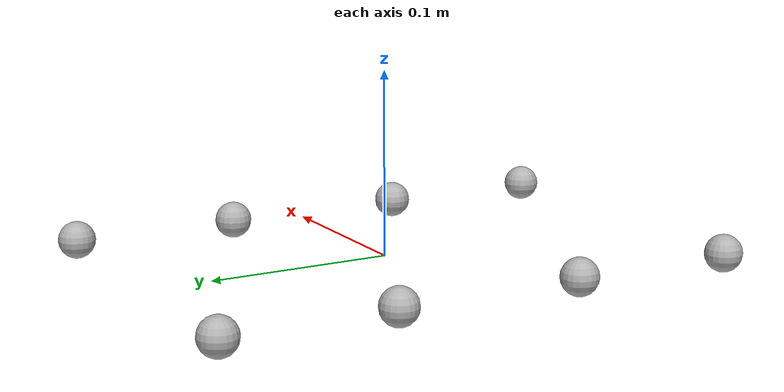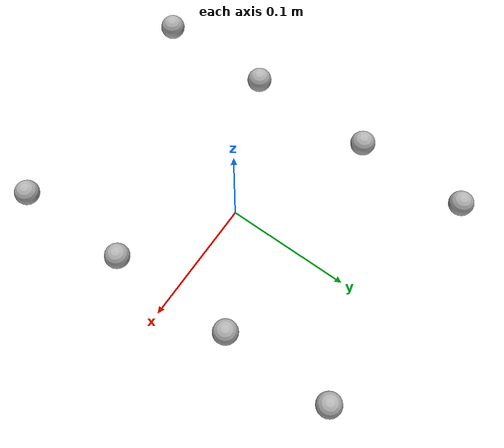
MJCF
<?xml version='1.0' encoding='utf-8'?>
<mujoco model="nemo4b">
<compiler angle="radian" autolimits="true" />

  <option timestep="0.0035" iterations="8" ls_iterations="4">
    <flag eulerdamp="disable" />
  </option>

  <custom>
        <numeric data="2500" name="constraint_limit_stiffness" />
        <numeric data="27000" name="constraint_stiffness" />
        <numeric data="30" name="constraint_ang_damping" />
        <numeric data="80" name="constraint_vel_damping" />
        <numeric data="-0.05" name="ang_damping" />
        <numeric data="0.5" name="joint_scale_pos" />
        <numeric data="0.1" name="joint_scale_ang" />
        <numeric data="0" name="spring_mass_scale" />
        <numeric data="1" name="spring_inertia_scale" />
        <numeric data="20" name="matrix_inv_iterations" />
        <numeric data="15" name="solver_maxls" />
  </custom>

  <visual>
    <global ellipsoidinertia="true" />
  </visual>
  <default>
    <geom contype="0" conaffinity="0" condim="1" solref="0.005 1" />
    <equality solref="0.005 1" />
    <default class="robot">
      <site rgba="1 0 0 1" size="0.01" group="5" />
      <default class="collision">
        <geom conaffinity="1" contype="2" rgba="0.5 0.5 0.5 1" material="metallic" />
        <default class="foot_sphere">
            <geom contype="1" conaffinity="1" size=".01" type="sphere"/>
          </default>
      </default>
    </default>
  </default>

  <asset>
    <material name="metallic" rgba="0.7 0.7 0.7 1" />
    <material name="black" rgba="0.2 0.2 0.2 1" />
    <material name="transparent" rgba="0 0 0 0" />
  </asset>

<worldbody>
  <light name="spotlight" mode="targetbodycom" target="pelvis" pos="0 -6 4" cutoff="30" />
  <body name="pelvis" pos="0.0 0.0 0.6088" childclass="robot">
    <inertial pos="0.00505250 -0.00005977 0.18608225" mass="5.29698285" fullinertia="0.11381520 0.08283557 0.05217409 -0.00002232 0.00625310 -0.00006998" />
    <freejoint name="floating_base" />
    <site name="imu"/>
    <body name="l_hip_pitch" pos="0.0 0.0965 -0.112">
      <inertial pos="-0.01821923 -0.0 -3.205e-05" mass="1.8670971" fullinertia="0.00265583 0.00363357 0.00358009 -2e-07 -1.09e-06 -0.0" />
      <joint armature="0.005" damping="2" actuatorfrcrange="-47.4 47.4" name="l_hip_pitch" axis="0 1 0" range="-1.3 1.3" />
      <body name="l_hip_roll" pos="-0.07875 0.0 0.0">
        <inertial pos="-0.01740501 1.764e-05 -0.05845559" mass="2.00459959" fullinertia="0.0064706 0.00633136 0.00303949 4.7e-07 -0.00070962 9e-07" />
        <joint armature="0.005" damping="1" actuatorfrcrange="-23.7 23.7" name="l_hip_roll" axis="1 0 0" range="-0.4 1.5" />
        <body name="l_hip_yaw" pos="0.00715 0.0 -0.1263">
          <inertial pos="3.205e-05 -0.0 -0.06053076999999999" mass="1.8670971" fullinertia="0.00358009 0.00363357 0.00265583 -0.0 -1.09e-06 -2e-07" />
          <joint armature="0.005" damping="1" actuatorfrcrange="-23.7 23.7" name="l_hip_yaw" axis="0 0 1" range="-1.0 1.0" />
          <body name="l_knee" pos="0.0 0.0 -0.07875">
            <inertial pos="0.0 5e-05 -0.10289321" mass="0.58007416" fullinertia="0.0070466 0.00513742 0.00225232 -0.0 0.0 -0.0" />
            <joint armature="0.005" damping="2" actuatorfrcrange="-47.4 47.4" name="l_knee" axis="0 1 0" range="-0.3 2" />
            <body name="l_foot_pitch" pos="0.0 0.0 -0.206">
              <inertial pos="0.01821923 -0.0 -3.205e-05" mass="1.8670971" fullinertia="0.00265583 0.00363357 0.00358009 -2e-07 1.09e-06 -0.0" />
              <joint armature="0.005" damping="2" actuatorfrcrange="-47.4 47.4" name="l_foot_pitch" axis="0 1 0" range="-2.0 2.0" />
              <body name="l_foot_roll" pos="0.07875 0.0 0.0">
                <inertial pos="0.00757956 1.139e-05 -0.03942379" mass="1.5526793" fullinertia="0.00385478 0.0054167 0.00391016 5.4e-07 0.0010808 3e-07" />
                <joint armature="0.005" damping="1" actuatorfrcrange="-23.7 23.7" name="l_foot_roll" axis="1 0 0" range="-1 1" />
                <geom name="left_foot_1" class="foot_sphere" pos="0.0763 0.0455 -0.07775"/>
                <geom name="left_foot_2" class="foot_sphere" pos="0.0763 -0.0455 -0.07775"/>
                <geom name="left_foot_3" class="foot_sphere" pos="-0.1137 0.0455 -0.07775"/>
                <geom name="left_foot_4" class="foot_sphere" pos="-0.1137 -0.0455 -0.07775"/>
                <site name="left_foot" pos="0.0 0.0 -0.08275" />
              </body>
            </body>
          </body>
        </body>
      </body>
    </body>

    <body name="r_hip_pitch" pos="0.0 -0.0965 -0.112">
      <inertial pos="-0.01821923 -0.0 -3.205e-05" mass="1.8670971" fullinertia="0.00265583 0.00363357 0.00358009 -2e-07 -1.09e-06 -0.0" />
      <joint armature="0.005" damping="2" actuatorfrcrange="-47.4 47.4" name="r_hip_pitch" axis="0 1 0" range="-1.3 1.3" />
      <body name="r_hip_roll" pos="-0.07875 -0.0 0.0">
        <inertial pos="-0.01740501 1.764e-05 -0.05845559" mass="2.00459959" fullinertia="0.0064706 0.00633136 0.00303949 4.7e-07 -0.00070962 9e-07" />
        <joint armature="0.005" damping="1" actuatorfrcrange="-23.7 23.7" name="r_hip_roll" axis="1 0 0" range="-1.5 0.40" />
        <body name="r_hip_yaw" pos="0.00715 -0.0 -0.1263">
          <inertial pos="3.205e-05 -0.0 -0.06053076999999999" mass="1.8670971" fullinertia="0.00358009 0.00363357 0.00265583 -0.0 -1.09e-06 -2e-07" />
          <joint armature="0.005" damping="1" actuatorfrcrange="-23.7 23.7" name="r_hip_yaw" axis="0 0 1" range="-1.0 1.0" />
          <body name="r_knee" pos="0.0 -0.0 -0.07875">
            <inertial pos="0.0 5e-05 -0.10289321" mass="0.58007416" fullinertia="0.0070466 0.00513742 0.00225232 -0.0 0.0 -0.0" />
            <joint armature="0.005" damping="2" actuatorfrcrange="-47.4 47.4" name="r_knee" axis="0 1 0" range="-0.3 2" />
            <body name="r_foot_pitch" pos="0.0 -0.0 -0.206">
              <inertial pos="0.01821923 -0.0 -3.205e-05" mass="1.8670971" fullinertia="0.00265583 0.00363357 0.00358009 -2e-07 1.09e-06 -0.0" />
              <joint armature="0.005" damping="2" actuatorfrcrange="-47.4 47.4" name="r_foot_pitch" axis="0 1 0" range="-2.0 2.0" />
              <body name="r_foot_roll" pos="0.07875 -0.0 0.0">
                <inertial pos="0.00757956 1.139e-05 -0.03942379" mass="1.5526793" fullinertia="0.00385478 0.0054167 0.00391016 5.4e-07 0.0010808 3e-07" />
                <joint armature="0.005" damping="1" actuatorfrcrange="-23.7 23.7" name="r_foot_roll" axis="1 0 0" range="-1 1" />
                <geom name="right_foot_1" class="foot_sphere" pos="0.0763 0.0455 -0.07775"/>
                <geom name="right_foot_2" class="foot_sphere" pos="0.0763 -0.0455 -0.07775"/>
                <geom name="right_foot_3" class="foot_sphere" pos="-0.1137 0.0455 -0.07775"/>
                <geom name="right_foot_4" class="foot_sphere" pos="-0.1137 -0.0455 -0.07775"/>
                <site name="right_foot" pos="0.0 0.0 -0.08275" />
              </body>
            </body>
          </body>
        </body>
      </body>
    </body>

    <body name="l_shoulder_pitch" pos="-0.001404 0.1199 0.163">
      <inertial pos="0.0022 -0.05981 0.000" mass="0.89824188" diaginertia="0.00181720 0.00091278 0.00118927"/>
      <joint armature="0.005" damping="1" actuatorfrcrange="-23.7 23.7" name="l_shoulder_pitch" axis="0 1 0" range="-1.5 1.5" />
      <body name="l_shoulder_roll" pos="0.020174 0.0765 0.0009">
        <inertial pos="-0.01717369 0.00501388 -0.13591536" mass="1.01634729" diaginertia="0.00374627 0.00437525 0.00097343"/>
        <joint armature="0.005" damping="1" actuatorfrcrange="-23.7 23.7" name="l_shoulder_roll" axis="1 0 0" range="0.04 2.0" />
        <body name="l_elbow" pos="-0.027502 0.0104  -0.173047">
          <inertial pos="0 -0.0113 -0.05618" mass="0.19590289" diaginertia="0.00111956 0.00122819 0.00011420"/>
          <joint armature="0.005" damping="1" actuatorfrcrange="-23.7 23.7" name="l_elbow" axis="0 1 0" range="-1.0 1.0" />
        </body>
      </body>
    </body>

    <!-- Right arm (mirrored across xz-plane: y -> -y) -->
    <body name="r_shoulder_pitch" pos="-0.001404 -0.1199 0.163">
      <inertial pos="0.0022 0.05981 0.000" mass="0.89824188" diaginertia="0.00181720 0.00091278 0.00118927"/>
      <joint armature="0.005" damping="1" actuatorfrcrange="-23.7 23.7" name="r_shoulder_pitch" axis="0 1 0" range="-1.5 1.5" />
      <body name="r_shoulder_roll" pos="0.020174 -0.0765 0.0009">
        <inertial pos="-0.01717369 -0.00501388 -0.13591536" mass="1.01634729" diaginertia="0.00374627 0.00437525 0.00097343"/>
        <joint armature="0.005" damping="1" actuatorfrcrange="-23.7 23.7" name="r_shoulder_roll" axis="1 0 0" range="-2.0 -0.04" />
        <body name="r_elbow" pos="-0.027502 -0.0104  -0.173047">
          <inertial pos="0 0.0113 -0.05618" mass="0.19590289" diaginertia="0.00111956 0.00122819 0.00011420"/>
          <joint armature="0.005" damping="1" actuatorfrcrange="-23.7 23.7" name="r_elbow" axis="0 1 0" range="-1.0 1.0" />
        </body>
      </body>
    </body>
    <!-- End right arm -->

    <light name="tracking" mode="trackcom" pos="0 0 2" />
  </body>
</worldbody>
<actuator>
  <position kp="35.0" class="robot" name="l_hip_pitch" joint="l_hip_pitch" inheritrange="1"/>
  <position kp="25.0" class="robot" name="l_hip_roll" joint="l_hip_roll" inheritrange="1"/>
  <position kp="25.0" class="robot" name="l_hip_yaw" joint="l_hip_yaw" inheritrange="1"/>
  <position kp="35.0" class="robot" name="l_knee" joint="l_knee" inheritrange="1"/>
  <motor class="robot" name="l_foot_pitch" joint="l_foot_pitch"/>
  <motor class="robot" name="l_foot_roll" joint="l_foot_roll"/>

  <position kp="35.0" class="robot" name="r_hip_pitch" joint="r_hip_pitch" inheritrange="1"/>
  <position kp="25.0" class="robot" name="r_hip_roll" joint="r_hip_roll" inheritrange="1"/>
  <position kp="25.0" class="robot" name="r_hip_yaw" joint="r_hip_yaw" inheritrange="1"/>
  <position kp="35.0" class="robot" name="r_knee" joint="r_knee" inheritrange="1"/>
  <motor class="robot" name="r_foot_pitch" joint="r_foot_pitch"/>
  <motor class="robot" name="r_foot_roll" joint="r_foot_roll"/>

  <position kp="5.0" class="robot" name="l_shoulder_pitch" joint="l_shoulder_pitch" inheritrange="1"/>
  <position kp="5.0" class="robot" name="l_shoulder_roll" joint="l_shoulder_roll" inheritrange="1"/>
  <position kp="5.0" class="robot" name="l_elbow" joint="l_elbow" inheritrange="1"/>

  <position kp="5.0" class="robot" name="r_shoulder_pitch" joint="r_shoulder_pitch" inheritrange="1"/>
  <position kp="5.0" class="robot" name="r_shoulder_roll" joint="r_shoulder_roll" inheritrange="1"/>
  <position kp="5.0" class="robot" name="r_elbow" joint="r_elbow" inheritrange="1"/>
</actuator>

<keyframe>
    <key name="home" qpos="0 0 0.63   1 0 0 0
    -0.698132 0 0 1.22173 -0.523599 0
    -0.698132 0 0 1.22173 -0.523599 0
    0 0.05 0
    0 -0.05 0" />
    <key name="sit"  qpos="-0.03 0 0.52   1 0 -0.045 0
    -0.9673 0 0 2.13 -1.0735 0
    -0.9673 0 0 2.13 -1.0735 0
    0 0.05 0
    0 0.05 0"/>
    <key name="stand" qpos="0 0 0.63   1 0 0 0
    -1.06169705 0 0 1.22173 -0.08 0
    -1.06169705 0 0 1.22173 -0.08 0
    0 0.05 0
    0 -0.05 0" />
</keyframe>

<sensor>
    <gyro site="imu" name="gyro"/>
    <velocimeter site="imu" name="local_linvel"/>
    <accelerometer site="imu" name="accelerometer"/>
    <framezaxis objtype="site" objname="imu" name="upvector"/>
    <framexaxis objtype="site" objname="imu" name="forwardvector"/>
    <framelinvel objtype="site" objname="imu" name="global_linvel"/>
    <frameangvel objtype="site" objname="imu" name="global_angvel"/>
    <framepos objtype="site" objname="imu" name="position"/>
    <framequat objtype="site" objname="imu" name="orientation"/>
    <framelinvel objtype="site" objname="left_foot" name="left_foot_global_linvel"/>
    <framelinvel objtype="site" objname="right_foot" name="right_foot_global_linvel"/>
    <framepos objtype="site" objname="left_foot" name="left_foot_pos"/>
    <framepos objtype="site" objname="right_foot" name="right_foot_pos"/>
</sensor>

</mujoco>
